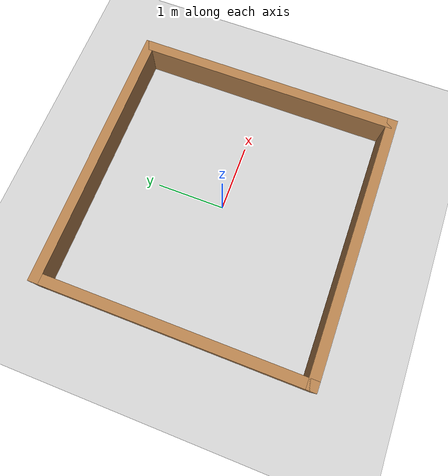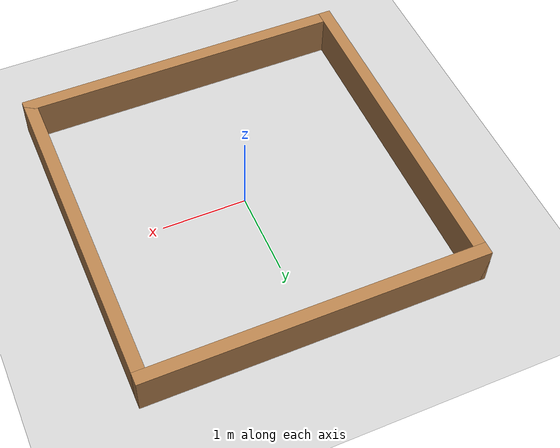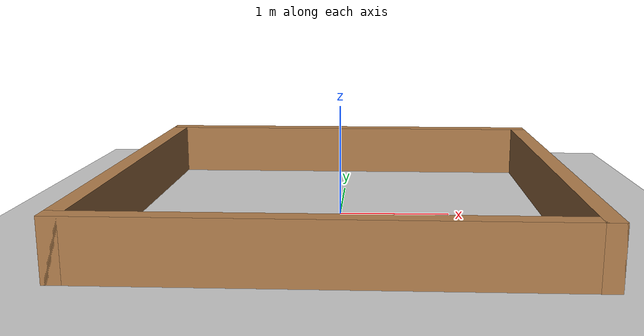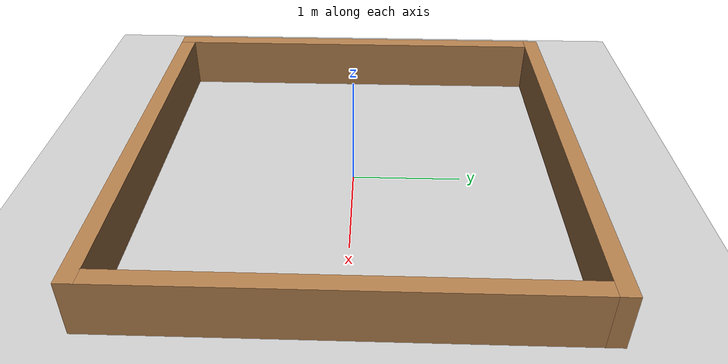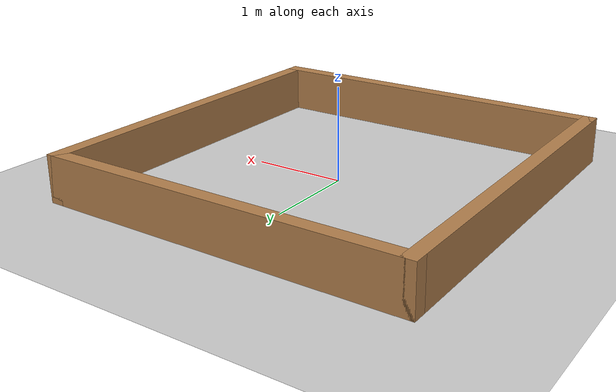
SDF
<sdf version='1.6'>
  <world name='default'>
    <!-- A global light source -->
    <include>
      <uri>model://sun</uri>
    </include>

    <!-- A ground plane -->
    <include>
      <uri>model://ground_plane</uri>
    </include>

    <physics type="ode">
      <real_time_update_rate>1000.0</real_time_update_rate>
      <max_step_size>0.001</max_step_size>
      <real_time_factor>1</real_time_factor>
      <ode>
        <solver>
          <type>quick</type>
          <iters>50</iters>
          <precon_iters>0</precon_iters>
          <sor>1.400000</sor>
          <use_dynamic_moi_rescaling>1</use_dynamic_moi_rescaling>
        </solver>
        <constraints>
          <cfm>0.00001</cfm>
          <erp>0.2</erp>
          <contact_max_correcting_vel>2000.000000</contact_max_correcting_vel>
          <contact_surface_layer>0.01000</contact_surface_layer>
        </constraints>
      </ode>
    </physics>

    <!-- Load world -->
    <include>
      <uri>model://turtlebot3_square</uri>
    </include>

    <scene>
      <ambient>0.4 0.4 0.4 1</ambient>
      <background>0.7 0.7 0.7 1</background>
      <shadows>true</shadows>
    </scene>

    <gui fullscreen='0'>
      <camera name='user_camera'>
        <pose>0.0 0.0 17.0 0 1.5708 0</pose>
        <view_controller>orbit</view_controller>
      </camera>
    </gui>

    <!-- Enable Gazebo Global State -->
    <plugin name="gazebo_ros_state" filename="libgazebo_ros_state.so">
        <update_rate>5.0</update_rate>
    </plugin>

  </world>
</sdf>

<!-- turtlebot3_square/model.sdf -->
<sdf version='1.6'>
  <model name='turtlebot3_square'>
    <pose frame=''>0 0 0 0 -0 0</pose>
    <link name='Wall_0'>
      <collision name='Wall_0_Collision'>
        <geometry>
          <box>
            <size>4 0.15 0.5</size>
          </box>
        </geometry>
        <pose frame=''>0 0 0.25 0 -0 0</pose>
      </collision>
      <visual name='Wall_0_Visual'>
        <pose frame=''>0 0 0.25 0 -0 0</pose>
        <geometry>
          <box>
            <size>4 0.15 0.5</size>
          </box>
        </geometry>
        <material>
          <script>
            <uri>file://media/materials/scripts/gazebo.material</uri>
            <name>Gazebo/Wood</name>
          </script>
          <ambient>1 1 1 1</ambient>
        </material>
      </visual>
      <pose frame=''>0 1.925 0 0 -0 0</pose>
    </link>
    <link name='Wall_2'>
      <collision name='Wall_2_Collision'>
        <geometry>
          <box>
            <size>4 0.15 0.5</size>
          </box>
        </geometry>
        <pose frame=''>0 0 0.25 0 -0 0</pose>
      </collision>
      <visual name='Wall_2_Visual'>
        <pose frame=''>0 0 0.25 0 -0 0</pose>
        <geometry>
          <box>
            <size>4 0.15 0.5</size>
          </box>
        </geometry>
        <material>
          <script>
            <uri>file://media/materials/scripts/gazebo.material</uri>
            <name>Gazebo/Wood</name>
          </script>
          <ambient>1 1 1 1</ambient>
        </material>
      </visual>
      <pose frame=''>-1.925 0 0 0 0 -1.5708</pose>
    </link>
    <link name='Wall_3'>
      <collision name='Wall_3_Collision'>
        <geometry>
          <box>
            <size>4 0.15 0.5</size>
          </box>
        </geometry>
        <pose frame=''>0 0 0.25 0 -0 0</pose>
      </collision>
      <visual name='Wall_3_Visual'>
        <pose frame=''>0 0 0.25 0 -0 0</pose>
        <geometry>
          <box>
            <size>4 0.15 0.5</size>
          </box>
        </geometry>
        <material>
          <script>
            <uri>file://media/materials/scripts/gazebo.material</uri>
            <name>Gazebo/Wood</name>
          </script>
          <ambient>1 1 1 1</ambient>
        </material>
      </visual>
      <pose frame=''>0 -1.925 0 0 -0 0</pose>
    </link>
    <link name='Wall_4'>
      <collision name='Wall_4_Collision'>
        <geometry>
          <box>
            <size>4 0.15 0.5</size>
          </box>
        </geometry>
        <pose frame=''>0 0 0.25 0 -0 0</pose>
      </collision>
      <visual name='Wall_4_Visual'>
        <pose frame=''>0 0 0.25 0 -0 0</pose>
        <geometry>
          <box>
            <size>4 0.15 0.5</size>
          </box>
        </geometry>
        <material>
          <script>
            <uri>file://media/materials/scripts/gazebo.material</uri>
            <name>Gazebo/Wood</name>
          </script>
          <ambient>1 1 1 1</ambient>
        </material>
      </visual>
      <pose frame=''>1.925 0 0 0 -0 1.5708</pose>
    </link>
    <static>1</static>
  </model>
</sdf>
